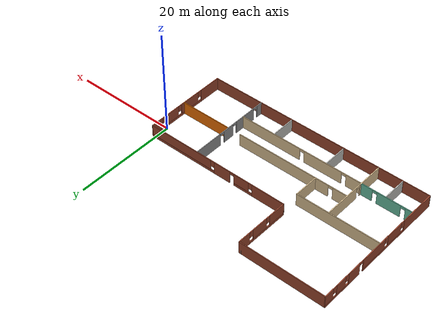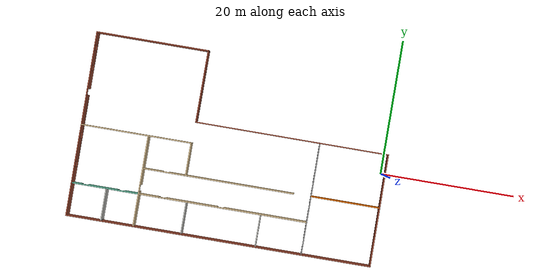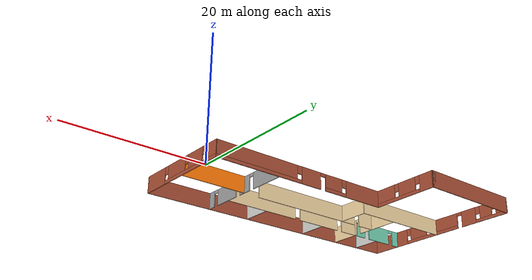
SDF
<?xml version='1.0'?>
<sdf version='1.6'>
  <model name='apartment2'>
    <pose frame=''>-22.1279 -0.039931 0 0 -0 0</pose>
    <link name='Wall_1'>
      <collision name='Wall_1_Collision'>
        <geometry>
          <box>
            <size>45.5 0.15 2.5</size>
          </box>
        </geometry>
        <pose frame=''>0 0 1.25 0 -0 0</pose>
      </collision>
      <visual name='Wall_1_Visual'>
        <pose frame=''>0 0 1.25 0 -0 0</pose>
        <geometry>
          <box>
            <size>45.5 0.15 2.5</size>
          </box>
        </geometry>
        <material>
          <script>
            <uri>file://media/materials/scripts/gazebo.material</uri>
            <name>Gazebo/Bricks</name>
          </script>
          <ambient>1 1 1 1</ambient>
        </material>
        <meta>
          <layer>0</layer>
        </meta>
      </visual>
      <pose frame=''>-0.000138 -13.6751 0 0 -0 0</pose>
    </link>
    <link name='Wall_10'>
      <collision name='Wall_10_Collision'>
        <geometry>
          <box>
            <size>0.15 0.15 2.5</size>
          </box>
        </geometry>
        <pose frame=''>0 0 1.25 0 -0 0</pose>
      </collision>
      <visual name='Wall_10_Visual'>
        <pose frame=''>0 0 1.25 0 -0 0</pose>
        <geometry>
          <box>
            <size>0.15 0.15 2.5</size>
          </box>
        </geometry>
        <material>
          <script>
            <uri>file://media/materials/scripts/gazebo.material</uri>
            <name>Gazebo/Grey</name>
          </script>
          <ambient>1 1 1 1</ambient>
        </material>
        <meta>
          <layer>0</layer>
        </meta>
      </visual>
      <pose frame=''>-6.45214 13.6749 0 0 -0 0</pose>
    </link>
    <link name='Wall_12'>
      <pose frame=''>-22.6751 -6.9e-05 0 0 -0 1.5708</pose>
      <visual name='Wall_12_Visual_0'>
        <pose frame=''>-10.0987 0 1.25 0 -0 0</pose>
        <geometry>
          <box>
            <size>7.30258 0.15 2.5</size>
          </box>
        </geometry>
        <material>
          <script>
            <uri>file://media/materials/scripts/gazebo.material</uri>
            <name>Gazebo/Bricks</name>
          </script>
          <ambient>1 1 1 1</ambient>
        </material>
        <meta>
          <layer>0</layer>
        </meta>
      </visual>
      <collision name='Wall_12_Collision_0'>
        <geometry>
          <box>
            <size>7.30258 0.15 2.5</size>
          </box>
        </geometry>
        <pose frame=''>-10.0987 0 1.25 0 -0 0</pose>
      </collision>
      <visual name='Wall_12_Visual_1'>
        <pose frame=''>6.5908 0 1.25 0 -0 0</pose>
        <geometry>
          <box>
            <size>2.71862 0.15 2.5</size>
          </box>
        </geometry>
        <material>
          <script>
            <uri>file://media/materials/scripts/gazebo.material</uri>
            <name>Gazebo/Bricks</name>
          </script>
          <ambient>1 1 1 1</ambient>
        </material>
        <meta>
          <layer>0</layer>
        </meta>
      </visual>
      <collision name='Wall_12_Collision_1'>
        <geometry>
          <box>
            <size>2.71862 0.15 2.5</size>
          </box>
        </geometry>
        <pose frame=''>6.5908 0 1.25 0 -0 0</pose>
      </collision>
      <visual name='Wall_12_Visual_2'>
        <pose frame=''>-1.05797 0 0.25 0 -0 0</pose>
        <geometry>
          <box>
            <size>10.7789 0.15 0.5</size>
          </box>
        </geometry>
        <material>
          <script>
            <uri>file://media/materials/scripts/gazebo.material</uri>
            <name>Gazebo/Bricks</name>
          </script>
          <ambient>1 1 1 1</ambient>
        </material>
        <meta>
          <layer>0</layer>
        </meta>
      </visual>
      <collision name='Wall_12_Collision_2'>
        <geometry>
          <box>
            <size>10.7789 0.15 0.5</size>
          </box>
        </geometry>
        <pose frame=''>-1.05797 0 0.25 0 -0 0</pose>
      </collision>
      <visual name='Wall_12_Visual_3'>
        <pose frame=''>10.8501 0 0.25 0 -0 0</pose>
        <geometry>
          <box>
            <size>5.7999 0.15 0.5</size>
          </box>
        </geometry>
        <material>
          <script>
            <uri>file://media/materials/scripts/gazebo.material</uri>
            <name>Gazebo/Bricks</name>
          </script>
          <ambient>1 1 1 1</ambient>
        </material>
        <meta>
          <layer>0</layer>
        </meta>
      </visual>
      <collision name='Wall_12_Collision_3'>
        <geometry>
          <box>
            <size>5.7999 0.15 0.5</size>
          </box>
        </geometry>
        <pose frame=''>10.8501 0 0.25 0 -0 0</pose>
      </collision>
      <visual name='Wall_12_Visual_4'>
        <pose frame=''>-3.89394 0 1.5 0 -0 0</pose>
        <geometry>
          <box>
            <size>3.50695 0.15 2</size>
          </box>
        </geometry>
        <material>
          <script>
            <uri>file://media/materials/scripts/gazebo.material</uri>
            <name>Gazebo/Bricks</name>
          </script>
          <ambient>1 1 1 1</ambient>
        </material>
        <meta>
          <layer>0</layer>
        </meta>
      </visual>
      <collision name='Wall_12_Collision_4'>
        <geometry>
          <box>
            <size>3.50695 0.15 2</size>
          </box>
        </geometry>
        <pose frame=''>-3.89394 0 1.5 0 -0 0</pose>
      </collision>
      <visual name='Wall_12_Visual_5'>
        <pose frame=''>1.49551 0 1.5 0 -0 0</pose>
        <geometry>
          <box>
            <size>5.67195 0.15 2</size>
          </box>
        </geometry>
        <material>
          <script>
            <uri>file://media/materials/scripts/gazebo.material</uri>
            <name>Gazebo/Bricks</name>
          </script>
          <ambient>1 1 1 1</ambient>
        </material>
        <meta>
          <layer>0</layer>
        </meta>
      </visual>
      <collision name='Wall_12_Collision_5'>
        <geometry>
          <box>
            <size>5.67195 0.15 2</size>
          </box>
        </geometry>
        <pose frame=''>1.49551 0 1.5 0 -0 0</pose>
      </collision>
      <visual name='Wall_12_Visual_6'>
        <pose frame=''>1.49551 0 1.5 0 -0 0</pose>
        <geometry>
          <box>
            <size>5.67195 0.15 2</size>
          </box>
        </geometry>
        <material>
          <script>
            <uri>file://media/materials/scripts/gazebo.material</uri>
            <name>Gazebo/Bricks</name>
          </script>
          <ambient>1 1 1 1</ambient>
        </material>
        <meta>
          <layer>0</layer>
        </meta>
      </visual>
      <collision name='Wall_12_Collision_6'>
        <geometry>
          <box>
            <size>5.67195 0.15 2</size>
          </box>
        </geometry>
        <pose frame=''>1.49551 0 1.5 0 -0 0</pose>
      </collision>
      <visual name='Wall_12_Visual_7'>
        <pose frame=''>9.85754 0 1.5 0 -0 0</pose>
        <geometry>
          <box>
            <size>2.21487 0.15 2</size>
          </box>
        </geometry>
        <material>
          <script>
            <uri>file://media/materials/scripts/gazebo.material</uri>
            <name>Gazebo/Bricks</name>
          </script>
          <ambient>1 1 1 1</ambient>
        </material>
        <meta>
          <layer>0</layer>
        </meta>
      </visual>
      <collision name='Wall_12_Collision_7'>
        <geometry>
          <box>
            <size>2.21487 0.15 2</size>
          </box>
        </geometry>
        <pose frame=''>9.85754 0 1.5 0 -0 0</pose>
      </collision>
      <visual name='Wall_12_Visual_8'>
        <pose frame=''>12.7575 0 1.5 0 -0 0</pose>
        <geometry>
          <box>
            <size>1.98503 0.15 2</size>
          </box>
        </geometry>
        <material>
          <script>
            <uri>file://media/materials/scripts/gazebo.material</uri>
            <name>Gazebo/Bricks</name>
          </script>
          <ambient>1 1 1 1</ambient>
        </material>
        <meta>
          <layer>0</layer>
        </meta>
      </visual>
      <collision name='Wall_12_Collision_8'>
        <geometry>
          <box>
            <size>1.98503 0.15 2</size>
          </box>
        </geometry>
        <pose frame=''>12.7575 0 1.5 0 -0 0</pose>
      </collision>
      <visual name='Wall_12_Visual_9'>
        <pose frame=''>-6.04742 0 1.9 0 -0 0</pose>
        <geometry>
          <box>
            <size>0.8 0.15 1.2</size>
          </box>
        </geometry>
        <material>
          <script>
            <uri>file://media/materials/scripts/gazebo.material</uri>
            <name>Gazebo/Bricks</name>
          </script>
          <ambient>1 1 1 1</ambient>
        </material>
        <meta>
          <layer>0</layer>
        </meta>
      </visual>
      <collision name='Wall_12_Collision_9'>
        <geometry>
          <box>
            <size>0.8 0.15 1.2</size>
          </box>
        </geometry>
        <pose frame=''>-6.04742 0 1.9 0 -0 0</pose>
      </collision>
      <visual name='Wall_12_Visual_10'>
        <pose frame=''>8.3501 0 1.9 0 -0 0</pose>
        <geometry>
          <box>
            <size>0.8 0.15 1.2</size>
          </box>
        </geometry>
        <material>
          <script>
            <uri>file://media/materials/scripts/gazebo.material</uri>
            <name>Gazebo/Bricks</name>
          </script>
          <ambient>1 1 1 1</ambient>
        </material>
        <meta>
          <layer>0</layer>
        </meta>
      </visual>
      <collision name='Wall_12_Collision_10'>
        <geometry>
          <box>
            <size>0.8 0.15 1.2</size>
          </box>
        </geometry>
        <pose frame=''>8.3501 0 1.9 0 -0 0</pose>
      </collision>
      <visual name='Wall_12_Visual_11'>
        <pose frame=''>-1.74047 0 1.9 0 -0 0</pose>
        <geometry>
          <box>
            <size>0.8 0.15 1.2</size>
          </box>
        </geometry>
        <material>
          <script>
            <uri>file://media/materials/scripts/gazebo.material</uri>
            <name>Gazebo/Bricks</name>
          </script>
          <ambient>1 1 1 1</ambient>
        </material>
        <meta>
          <layer>0</layer>
        </meta>
      </visual>
      <collision name='Wall_12_Collision_11'>
        <geometry>
          <box>
            <size>0.8 0.15 1.2</size>
          </box>
        </geometry>
        <pose frame=''>-1.74047 0 1.9 0 -0 0</pose>
      </collision>
      <visual name='Wall_12_Visual_12'>
        <pose frame=''>11.365 0 1.9 0 -0 0</pose>
        <geometry>
          <box>
            <size>0.8 0.15 1.2</size>
          </box>
        </geometry>
        <material>
          <script>
            <uri>file://media/materials/scripts/gazebo.material</uri>
            <name>Gazebo/Bricks</name>
          </script>
          <ambient>1 1 1 1</ambient>
        </material>
        <meta>
          <layer>0</layer>
        </meta>
      </visual>
      <collision name='Wall_12_Collision_12'>
        <geometry>
          <box>
            <size>0.8 0.15 1.2</size>
          </box>
        </geometry>
        <pose frame=''>11.365 0 1.9 0 -0 0</pose>
      </collision>
      <visual name='Wall_12_Visual_13'>
        <pose frame=''>4.78149 0 2.25 0 -0 0</pose>
        <geometry>
          <box>
            <size>0.9 0.15 0.5</size>
          </box>
        </geometry>
        <material>
          <script>
            <uri>file://media/materials/scripts/gazebo.material</uri>
            <name>Gazebo/Bricks</name>
          </script>
          <ambient>1 1 1 1</ambient>
        </material>
        <meta>
          <layer>0</layer>
        </meta>
      </visual>
      <collision name='Wall_12_Collision_13'>
        <geometry>
          <box>
            <size>0.9 0.15 0.5</size>
          </box>
        </geometry>
        <pose frame=''>4.78149 0 2.25 0 -0 0</pose>
      </collision>
      <visual name='Wall_12_Visual_14'>
        <pose frame=''>4.78149 0 2.25 0 -0 0</pose>
        <geometry>
          <box>
            <size>0.9 0.15 0.5</size>
          </box>
        </geometry>
        <material>
          <script>
            <uri>file://media/materials/scripts/gazebo.material</uri>
            <name>Gazebo/Bricks</name>
          </script>
          <ambient>1 1 1 1</ambient>
        </material>
        <meta>
          <layer>0</layer>
        </meta>
      </visual>
      <collision name='Wall_12_Collision_14'>
        <geometry>
          <box>
            <size>0.9 0.15 0.5</size>
          </box>
        </geometry>
        <pose frame=''>4.78149 0 2.25 0 -0 0</pose>
      </collision>
    </link>
    <link name='Wall_13'>
      <collision name='Wall_13_Collision'>
        <geometry>
          <box>
            <size>16.75 0.15 2.5</size>
          </box>
        </geometry>
        <pose frame=''>0 0 1.25 0 -0 0</pose>
      </collision>
      <visual name='Wall_13_Visual'>
        <pose frame=''>0 0 1.25 0 -0 0</pose>
        <geometry>
          <box>
            <size>16.75 0.15 2.5</size>
          </box>
        </geometry>
        <material>
          <script>
            <uri>file://media/materials/scripts/gazebo.material</uri>
            <name>Gazebo/Bricks</name>
          </script>
          <ambient>1 1 1 1</ambient>
        </material>
        <meta>
          <layer>0</layer>
        </meta>
      </visual>
      <pose frame=''>-14.3751 13.6749 0 0 -0 0</pose>
    </link>
    <link name='Wall_14'>
      <pose frame=''>-6.10614 8.34393 0 0 0 -1.57661</pose>
      <visual name='Wall_14_Visual_0'>
        <pose frame=''>-4.16826 0 1.25 0 -0 0</pose>
        <geometry>
          <box>
            <size>2.47566 0.15 2.5</size>
          </box>
        </geometry>
        <material>
          <script>
            <uri>file://media/materials/scripts/gazebo.material</uri>
            <name>Gazebo/Bricks</name>
          </script>
          <ambient>1 1 1 1</ambient>
        </material>
        <meta>
          <layer>0</layer>
        </meta>
      </visual>
      <collision name='Wall_14_Collision_0'>
        <geometry>
          <box>
            <size>2.47566 0.15 2.5</size>
          </box>
        </geometry>
        <pose frame=''>-4.16826 0 1.25 0 -0 0</pose>
      </collision>
      <visual name='Wall_14_Visual_1'>
        <pose frame=''>1.23783 0 0.25 0 -0 0</pose>
        <geometry>
          <box>
            <size>8.33652 0.15 0.5</size>
          </box>
        </geometry>
        <material>
          <script>
            <uri>file://media/materials/scripts/gazebo.material</uri>
            <name>Gazebo/Bricks</name>
          </script>
          <ambient>1 1 1 1</ambient>
        </material>
        <meta>
          <layer>0</layer>
        </meta>
      </visual>
      <collision name='Wall_14_Collision_1'>
        <geometry>
          <box>
            <size>8.33652 0.15 0.5</size>
          </box>
        </geometry>
        <pose frame=''>1.23783 0 0.25 0 -0 0</pose>
      </collision>
      <visual name='Wall_14_Visual_2'>
        <pose frame=''>-0.530087 0 1.5 0 -0 0</pose>
        <geometry>
          <box>
            <size>3.20068 0.15 2</size>
          </box>
        </geometry>
        <material>
          <script>
            <uri>file://media/materials/scripts/gazebo.material</uri>
            <name>Gazebo/Bricks</name>
          </script>
          <ambient>1 1 1 1</ambient>
        </material>
        <meta>
          <layer>0</layer>
        </meta>
      </visual>
      <collision name='Wall_14_Collision_2'>
        <geometry>
          <box>
            <size>3.20068 0.15 2</size>
          </box>
        </geometry>
        <pose frame=''>-0.530087 0 1.5 0 -0 0</pose>
      </collision>
      <visual name='Wall_14_Visual_3'>
        <pose frame=''>3.63817 0 1.5 0 -0 0</pose>
        <geometry>
          <box>
            <size>3.53584 0.15 2</size>
          </box>
        </geometry>
        <material>
          <script>
            <uri>file://media/materials/scripts/gazebo.material</uri>
            <name>Gazebo/Bricks</name>
          </script>
          <ambient>1 1 1 1</ambient>
        </material>
        <meta>
          <layer>0</layer>
        </meta>
      </visual>
      <collision name='Wall_14_Collision_3'>
        <geometry>
          <box>
            <size>3.53584 0.15 2</size>
          </box>
        </geometry>
        <pose frame=''>3.63817 0 1.5 0 -0 0</pose>
      </collision>
      <visual name='Wall_14_Visual_4'>
        <pose frame=''>-2.53043 0 1.9 0 -0 0</pose>
        <geometry>
          <box>
            <size>0.8 0.15 1.2</size>
          </box>
        </geometry>
        <material>
          <script>
            <uri>file://media/materials/scripts/gazebo.material</uri>
            <name>Gazebo/Bricks</name>
          </script>
          <ambient>1 1 1 1</ambient>
        </material>
        <meta>
          <layer>0</layer>
        </meta>
      </visual>
      <collision name='Wall_14_Collision_4'>
        <geometry>
          <box>
            <size>0.8 0.15 1.2</size>
          </box>
        </geometry>
        <pose frame=''>-2.53043 0 1.9 0 -0 0</pose>
      </collision>
      <visual name='Wall_14_Visual_5'>
        <pose frame=''>1.47025 0 1.9 0 -0 0</pose>
        <geometry>
          <box>
            <size>0.8 0.15 1.2</size>
          </box>
        </geometry>
        <material>
          <script>
            <uri>file://media/materials/scripts/gazebo.material</uri>
            <name>Gazebo/Bricks</name>
          </script>
          <ambient>1 1 1 1</ambient>
        </material>
        <meta>
          <layer>0</layer>
        </meta>
      </visual>
      <collision name='Wall_14_Collision_5'>
        <geometry>
          <box>
            <size>0.8 0.15 1.2</size>
          </box>
        </geometry>
        <pose frame=''>1.47025 0 1.9 0 -0 0</pose>
      </collision>
    </link>
    <link name='Wall_17'>
      <pose frame=''>8.23786 2.99943 0 0 0 -0.000939</pose>
      <visual name='Wall_17_Visual_0'>
        <pose frame=''>-11.1575 0 1.25 0 -0 0</pose>
        <geometry>
          <box>
            <size>6.58507 0.15 2.5</size>
          </box>
        </geometry>
        <material>
          <script>
            <uri>file://media/materials/scripts/gazebo.material</uri>
            <name>Gazebo/Bricks</name>
          </script>
          <ambient>1 1 1 1</ambient>
        </material>
        <meta>
          <layer>0</layer>
        </meta>
      </visual>
      <collision name='Wall_17_Collision_0'>
        <geometry>
          <box>
            <size>6.58507 0.15 2.5</size>
          </box>
        </geometry>
        <pose frame=''>-11.1575 0 1.25 0 -0 0</pose>
      </collision>
      <visual name='Wall_17_Visual_1'>
        <pose frame=''>-1.37942 0 1.25 0 -0 0</pose>
        <geometry>
          <box>
            <size>3.39525 0.15 2.5</size>
          </box>
        </geometry>
        <material>
          <script>
            <uri>file://media/materials/scripts/gazebo.material</uri>
            <name>Gazebo/Bricks</name>
          </script>
          <ambient>1 1 1 1</ambient>
        </material>
        <meta>
          <layer>0</layer>
        </meta>
      </visual>
      <collision name='Wall_17_Collision_1'>
        <geometry>
          <box>
            <size>3.39525 0.15 2.5</size>
          </box>
        </geometry>
        <pose frame=''>-1.37942 0 1.25 0 -0 0</pose>
      </collision>
      <visual name='Wall_17_Visual_2'>
        <pose frame=''>-5.92099 0 0.25 0 -0 0</pose>
        <geometry>
          <box>
            <size>3.8879 0.15 0.5</size>
          </box>
        </geometry>
        <material>
          <script>
            <uri>file://media/materials/scripts/gazebo.material</uri>
            <name>Gazebo/Bricks</name>
          </script>
          <ambient>1 1 1 1</ambient>
        </material>
        <meta>
          <layer>0</layer>
        </meta>
      </visual>
      <collision name='Wall_17_Collision_2'>
        <geometry>
          <box>
            <size>3.8879 0.15 0.5</size>
          </box>
        </geometry>
        <pose frame=''>-5.92099 0 0.25 0 -0 0</pose>
      </collision>
      <visual name='Wall_17_Visual_3'>
        <pose frame=''>7.38411 0 0.25 0 -0 0</pose>
        <geometry>
          <box>
            <size>14.1318 0.15 0.5</size>
          </box>
        </geometry>
        <material>
          <script>
            <uri>file://media/materials/scripts/gazebo.material</uri>
            <name>Gazebo/Bricks</name>
          </script>
          <ambient>1 1 1 1</ambient>
        </material>
        <meta>
          <layer>0</layer>
        </meta>
      </visual>
      <collision name='Wall_17_Collision_3'>
        <geometry>
          <box>
            <size>14.1318 0.15 0.5</size>
          </box>
        </geometry>
        <pose frame=''>7.38411 0 0.25 0 -0 0</pose>
      </collision>
      <visual name='Wall_17_Visual_4'>
        <pose frame=''>-5.52099 0 1.5 0 -0 0</pose>
        <geometry>
          <box>
            <size>3.0879 0.15 2</size>
          </box>
        </geometry>
        <material>
          <script>
            <uri>file://media/materials/scripts/gazebo.material</uri>
            <name>Gazebo/Bricks</name>
          </script>
          <ambient>1 1 1 1</ambient>
        </material>
        <meta>
          <layer>0</layer>
        </meta>
      </visual>
      <collision name='Wall_17_Collision_4'>
        <geometry>
          <box>
            <size>3.0879 0.15 2</size>
          </box>
        </geometry>
        <pose frame=''>-5.52099 0 1.5 0 -0 0</pose>
      </collision>
      <visual name='Wall_17_Visual_5'>
        <pose frame=''>-5.52099 0 1.5 0 -0 0</pose>
        <geometry>
          <box>
            <size>3.0879 0.15 2</size>
          </box>
        </geometry>
        <material>
          <script>
            <uri>file://media/materials/scripts/gazebo.material</uri>
            <name>Gazebo/Bricks</name>
          </script>
          <ambient>1 1 1 1</ambient>
        </material>
        <meta>
          <layer>0</layer>
        </meta>
      </visual>
      <collision name='Wall_17_Collision_5'>
        <geometry>
          <box>
            <size>3.0879 0.15 2</size>
          </box>
        </geometry>
        <pose frame=''>-5.52099 0 1.5 0 -0 0</pose>
      </collision>
      <visual name='Wall_17_Visual_6'>
        <pose frame=''>7.78411 0 1.5 0 -0 0</pose>
        <geometry>
          <box>
            <size>13.3318 0.15 2</size>
          </box>
        </geometry>
        <material>
          <script>
            <uri>file://media/materials/scripts/gazebo.material</uri>
            <name>Gazebo/Bricks</name>
          </script>
          <ambient>1 1 1 1</ambient>
        </material>
        <meta>
          <layer>0</layer>
        </meta>
      </visual>
      <collision name='Wall_17_Collision_6'>
        <geometry>
          <box>
            <size>13.3318 0.15 2</size>
          </box>
        </geometry>
        <pose frame=''>7.78411 0 1.5 0 -0 0</pose>
      </collision>
      <visual name='Wall_17_Visual_7'>
        <pose frame=''>-7.46494 0 1.9 0 -0 0</pose>
        <geometry>
          <box>
            <size>0.8 0.15 1.2</size>
          </box>
        </geometry>
        <material>
          <script>
            <uri>file://media/materials/scripts/gazebo.material</uri>
            <name>Gazebo/Bricks</name>
          </script>
          <ambient>1 1 1 1</ambient>
        </material>
        <meta>
          <layer>0</layer>
        </meta>
      </visual>
      <collision name='Wall_17_Collision_7'>
        <geometry>
          <box>
            <size>0.8 0.15 1.2</size>
          </box>
        </geometry>
        <pose frame=''>-7.46494 0 1.9 0 -0 0</pose>
      </collision>
      <visual name='Wall_17_Visual_8'>
        <pose frame=''>0.718207 0 1.9 0 -0 0</pose>
        <geometry>
          <box>
            <size>0.8 0.15 1.2</size>
          </box>
        </geometry>
        <material>
          <script>
            <uri>file://media/materials/scripts/gazebo.material</uri>
            <name>Gazebo/Bricks</name>
          </script>
          <ambient>1 1 1 1</ambient>
        </material>
        <meta>
          <layer>0</layer>
        </meta>
      </visual>
      <collision name='Wall_17_Collision_8'>
        <geometry>
          <box>
            <size>0.8 0.15 1.2</size>
          </box>
        </geometry>
        <pose frame=''>0.718207 0 1.9 0 -0 0</pose>
      </collision>
      <visual name='Wall_17_Visual_9'>
        <pose frame=''>-3.52704 0 2.25 0 -0 0</pose>
        <geometry>
          <box>
            <size>0.9 0.15 0.5</size>
          </box>
        </geometry>
        <material>
          <script>
            <uri>file://media/materials/scripts/gazebo.material</uri>
            <name>Gazebo/Bricks</name>
          </script>
          <ambient>1 1 1 1</ambient>
        </material>
        <meta>
          <layer>0</layer>
        </meta>
      </visual>
      <collision name='Wall_17_Collision_9'>
        <geometry>
          <box>
            <size>0.9 0.15 0.5</size>
          </box>
        </geometry>
        <pose frame=''>-3.52704 0 2.25 0 -0 0</pose>
      </collision>
      <visual name='Wall_17_Visual_10'>
        <pose frame=''>-3.52704 0 2.25 0 -0 0</pose>
        <geometry>
          <box>
            <size>0.9 0.15 0.5</size>
          </box>
        </geometry>
        <material>
          <script>
            <uri>file://media/materials/scripts/gazebo.material</uri>
            <name>Gazebo/Bricks</name>
          </script>
          <ambient>1 1 1 1</ambient>
        </material>
        <meta>
          <layer>0</layer>
        </meta>
      </visual>
      <collision name='Wall_17_Collision_10'>
        <geometry>
          <box>
            <size>0.9 0.15 0.5</size>
          </box>
        </geometry>
        <pose frame=''>-3.52704 0 2.25 0 -0 0</pose>
      </collision>
    </link>
    <link name='Wall_18'>
      <collision name='Wall_18_Collision'>
        <geometry>
          <box>
            <size>0.15 0.15 2.5</size>
          </box>
        </geometry>
        <pose frame=''>0 0 1.25 0 -0 0</pose>
      </collision>
      <visual name='Wall_18_Visual'>
        <pose frame=''>0 0 1.25 0 -0 0</pose>
        <geometry>
          <box>
            <size>0.15 0.15 2.5</size>
          </box>
        </geometry>
        <material>
          <script>
            <uri>file://media/materials/scripts/gazebo.material</uri>
            <name>Gazebo/Grey</name>
          </script>
          <ambient>1 1 1 1</ambient>
        </material>
        <meta>
          <layer>0</layer>
        </meta>
      </visual>
      <pose frame=''>22.6129 2.98593 0 0 -0 0</pose>
    </link>
    <link name='Wall_2'>
      <pose frame=''>22.6439 -5.34457 0 0 -0 1.57452</pose>
      <visual name='Wall_2_Visual_0'>
        <pose frame=''>-6.13822 0 1.25 0 -0 0</pose>
        <geometry>
          <box>
            <size>4.53472 0.15 2.5</size>
          </box>
        </geometry>
        <material>
          <script>
            <uri>file://media/materials/scripts/gazebo.material</uri>
            <name>Gazebo/Bricks</name>
          </script>
          <ambient>1 1 1 1</ambient>
        </material>
        <meta>
          <layer>0</layer>
        </meta>
      </visual>
      <collision name='Wall_2_Collision_0'>
        <geometry>
          <box>
            <size>4.53472 0.15 2.5</size>
          </box>
        </geometry>
        <pose frame=''>-6.13822 0 1.25 0 -0 0</pose>
      </collision>
      <visual name='Wall_2_Visual_1'>
        <pose frame=''>2.26736 0 0.25 0 -0 0</pose>
        <geometry>
          <box>
            <size>12.2764 0.15 0.5</size>
          </box>
        </geometry>
        <material>
          <script>
            <uri>file://media/materials/scripts/gazebo.material</uri>
            <name>Gazebo/Bricks</name>
          </script>
          <ambient>1 1 1 1</ambient>
        </material>
        <meta>
          <layer>0</layer>
        </meta>
      </visual>
      <collision name='Wall_2_Collision_1'>
        <geometry>
          <box>
            <size>12.2764 0.15 0.5</size>
          </box>
        </geometry>
        <pose frame=''>2.26736 0 0.25 0 -0 0</pose>
      </collision>
      <visual name='Wall_2_Visual_2'>
        <pose frame=''>-0.948689 0 1.5 0 -0 0</pose>
        <geometry>
          <box>
            <size>4.24434 0.15 2</size>
          </box>
        </geometry>
        <material>
          <script>
            <uri>file://media/materials/scripts/gazebo.material</uri>
            <name>Gazebo/Bricks</name>
          </script>
          <ambient>1 1 1 1</ambient>
        </material>
        <meta>
          <layer>0</layer>
        </meta>
      </visual>
      <collision name='Wall_2_Collision_2'>
        <geometry>
          <box>
            <size>4.24434 0.15 2</size>
          </box>
        </geometry>
        <pose frame=''>-0.948689 0 1.5 0 -0 0</pose>
      </collision>
      <visual name='Wall_2_Visual_3'>
        <pose frame=''>3.60389 0 1.5 0 -0 0</pose>
        <geometry>
          <box>
            <size>3.26081 0.15 2</size>
          </box>
        </geometry>
        <material>
          <script>
            <uri>file://media/materials/scripts/gazebo.material</uri>
            <name>Gazebo/Bricks</name>
          </script>
          <ambient>1 1 1 1</ambient>
        </material>
        <meta>
          <layer>0</layer>
        </meta>
      </visual>
      <collision name='Wall_2_Collision_3'>
        <geometry>
          <box>
            <size>3.26081 0.15 2</size>
          </box>
        </geometry>
        <pose frame=''>3.60389 0 1.5 0 -0 0</pose>
      </collision>
      <visual name='Wall_2_Visual_4'>
        <pose frame=''>7.21993 0 1.5 0 -0 0</pose>
        <geometry>
          <box>
            <size>2.37128 0.15 2</size>
          </box>
        </geometry>
        <material>
          <script>
            <uri>file://media/materials/scripts/gazebo.material</uri>
            <name>Gazebo/Bricks</name>
          </script>
          <ambient>1 1 1 1</ambient>
        </material>
        <meta>
          <layer>0</layer>
        </meta>
      </visual>
      <collision name='Wall_2_Collision_4'>
        <geometry>
          <box>
            <size>2.37128 0.15 2</size>
          </box>
        </geometry>
        <pose frame=''>7.21993 0 1.5 0 -0 0</pose>
      </collision>
      <visual name='Wall_2_Visual_5'>
        <pose frame=''>-3.47086 0 1.9 0 -0 0</pose>
        <geometry>
          <box>
            <size>0.8 0.15 1.2</size>
          </box>
        </geometry>
        <material>
          <script>
            <uri>file://media/materials/scripts/gazebo.material</uri>
            <name>Gazebo/Bricks</name>
          </script>
          <ambient>1 1 1 1</ambient>
        </material>
        <meta>
          <layer>0</layer>
        </meta>
      </visual>
      <collision name='Wall_2_Collision_5'>
        <geometry>
          <box>
            <size>0.8 0.15 1.2</size>
          </box>
        </geometry>
        <pose frame=''>-3.47086 0 1.9 0 -0 0</pose>
      </collision>
      <visual name='Wall_2_Visual_6'>
        <pose frame=''>1.57348 0 1.9 0 -0 0</pose>
        <geometry>
          <box>
            <size>0.8 0.15 1.2</size>
          </box>
        </geometry>
        <material>
          <script>
            <uri>file://media/materials/scripts/gazebo.material</uri>
            <name>Gazebo/Bricks</name>
          </script>
          <ambient>1 1 1 1</ambient>
        </material>
        <meta>
          <layer>0</layer>
        </meta>
      </visual>
      <collision name='Wall_2_Collision_6'>
        <geometry>
          <box>
            <size>0.8 0.15 1.2</size>
          </box>
        </geometry>
        <pose frame=''>1.57348 0 1.9 0 -0 0</pose>
      </collision>
      <visual name='Wall_2_Visual_7'>
        <pose frame=''>5.63429 0 1.9 0 -0 0</pose>
        <geometry>
          <box>
            <size>0.8 0.15 1.2</size>
          </box>
        </geometry>
        <material>
          <script>
            <uri>file://media/materials/scripts/gazebo.material</uri>
            <name>Gazebo/Bricks</name>
          </script>
          <ambient>1 1 1 1</ambient>
        </material>
        <meta>
          <layer>0</layer>
        </meta>
      </visual>
      <collision name='Wall_2_Collision_7'>
        <geometry>
          <box>
            <size>0.8 0.15 1.2</size>
          </box>
        </geometry>
        <pose frame=''>5.63429 0 1.9 0 -0 0</pose>
      </collision>
    </link>
    <link name='Wall_20'>
      <collision name='Wall_20_Collision'>
        <geometry>
          <box>
            <size>16.5 0.15 2.5</size>
          </box>
        </geometry>
        <pose frame=''>0 0 1.25 0 -0 0</pose>
      </collision>
      <visual name='Wall_20_Visual'>
        <pose frame=''>0 0 1.25 0 -0 0</pose>
        <geometry>
          <box>
            <size>16.5 0.15 2.5</size>
          </box>
        </geometry>
        <material>
          <script>
            <uri>file://media/materials/scripts/gazebo.material</uri>
            <name>Gazebo/Grey</name>
          </script>
          <ambient>0.921569 0.807843 0.615686 1</ambient>
        </material>
        <meta>
          <layer>0</layer>
        </meta>
      </visual>
      <pose frame=''>-14.4941 -0.141069 0 0 -0 0</pose>
    </link>
    <link name='Wall_21'>
      <collision name='Wall_21_Collision'>
        <geometry>
          <box>
            <size>5 0.15 2.5</size>
          </box>
        </geometry>
        <pose frame=''>0 0 1.25 0 -0 0</pose>
      </collision>
      <visual name='Wall_21_Visual'>
        <pose frame=''>0 0 1.25 0 -0 0</pose>
        <geometry>
          <box>
            <size>5 0.15 2.5</size>
          </box>
        </geometry>
        <material>
          <script>
            <uri>file://media/materials/scripts/gazebo.material</uri>
            <name>Gazebo/Grey</name>
          </script>
          <ambient>0.921569 0.807843 0.615686 1</ambient>
        </material>
        <meta>
          <layer>0</layer>
        </meta>
      </visual>
      <pose frame=''>-6.31914 -2.56607 0 0 0 -1.5708</pose>
    </link>
    <link name='Wall_22'>
      <collision name='Wall_22_Collision'>
        <geometry>
          <box>
            <size>16.25 0.15 2.5</size>
          </box>
        </geometry>
        <pose frame=''>0 0 1.25 0 -0 0</pose>
      </collision>
      <visual name='Wall_22_Visual'>
        <pose frame=''>0 0 1.25 0 -0 0</pose>
        <geometry>
          <box>
            <size>16.25 0.15 2.5</size>
          </box>
        </geometry>
        <material>
          <script>
            <uri>file://media/materials/scripts/gazebo.material</uri>
            <name>Gazebo/Grey</name>
          </script>
          <ambient>0.921569 0.807843 0.615686 1</ambient>
        </material>
        <meta>
          <layer>0</layer>
        </meta>
      </visual>
      <pose frame=''>1.73086 -4.99107 0 0 -0 0</pose>
    </link>
    <link name='Wall_24'>
      <pose frame=''>12.4019 -5.36442 0 0 0 -1.5708</pose>
      <visual name='Wall_24_Visual_0'>
        <pose frame=''>-5.45534 0 1.25 0 -0 0</pose>
        <geometry>
          <box>
            <size>5.83932 0.15 2.5</size>
          </box>
        </geometry>
        <material>
          <script>
            <uri>file://media/materials/scripts/gazebo.material</uri>
            <name>Gazebo/Grey</name>
          </script>
          <ambient>1 1 1 1</ambient>
        </material>
        <meta>
          <layer>0</layer>
        </meta>
      </visual>
      <collision name='Wall_24_Collision_0'>
        <geometry>
          <box>
            <size>5.83932 0.15 2.5</size>
          </box>
        </geometry>
        <pose frame=''>-5.45534 0 1.25 0 -0 0</pose>
      </collision>
      <visual name='Wall_24_Visual_1'>
        <pose frame=''>-0.48596 0 1.25 0 -0 0</pose>
        <geometry>
          <box>
            <size>2.29945 0.15 2.5</size>
          </box>
        </geometry>
        <material>
          <script>
            <uri>file://media/materials/scripts/gazebo.material</uri>
            <name>Gazebo/Grey</name>
          </script>
          <ambient>1 1 1 1</ambient>
        </material>
        <meta>
          <layer>0</layer>
        </meta>
      </visual>
      <collision name='Wall_24_Collision_1'>
        <geometry>
          <box>
            <size>2.29945 0.15 2.5</size>
          </box>
        </geometry>
        <pose frame=''>-0.48596 0 1.25 0 -0 0</pose>
      </collision>
      <visual name='Wall_24_Visual_2'>
        <pose frame=''>3.85176 0 1.25 0 -0 0</pose>
        <geometry>
          <box>
            <size>4.57598 0.15 2.5</size>
          </box>
        </geometry>
        <material>
          <script>
            <uri>file://media/materials/scripts/gazebo.material</uri>
            <name>Gazebo/Grey</name>
          </script>
          <ambient>1 1 1 1</ambient>
        </material>
        <meta>
          <layer>0</layer>
        </meta>
      </visual>
      <collision name='Wall_24_Collision_2'>
        <geometry>
          <box>
            <size>4.57598 0.15 2.5</size>
          </box>
        </geometry>
        <pose frame=''>3.85176 0 1.25 0 -0 0</pose>
      </collision>
      <visual name='Wall_24_Visual_3'>
        <pose frame=''>7.70737 0 1.25 0 -0 0</pose>
        <geometry>
          <box>
            <size>1.33525 0.15 2.5</size>
          </box>
        </geometry>
        <material>
          <script>
            <uri>file://media/materials/scripts/gazebo.material</uri>
            <name>Gazebo/Grey</name>
          </script>
          <ambient>1 1 1 1</ambient>
        </material>
        <meta>
          <layer>0</layer>
        </meta>
      </visual>
      <collision name='Wall_24_Collision_3'>
        <geometry>
          <box>
            <size>1.33525 0.15 2.5</size>
          </box>
        </geometry>
        <pose frame=''>7.70737 0 1.25 0 -0 0</pose>
      </collision>
      <visual name='Wall_24_Visual_4'>
        <pose frame=''>-2.08568 0 2.25 0 -0 0</pose>
        <geometry>
          <box>
            <size>0.9 0.15 0.5</size>
          </box>
        </geometry>
        <material>
          <script>
            <uri>file://media/materials/scripts/gazebo.material</uri>
            <name>Gazebo/Grey</name>
          </script>
          <ambient>1 1 1 1</ambient>
        </material>
        <meta>
          <layer>0</layer>
        </meta>
      </visual>
      <collision name='Wall_24_Collision_4'>
        <geometry>
          <box>
            <size>0.9 0.15 0.5</size>
          </box>
        </geometry>
        <pose frame=''>-2.08568 0 2.25 0 -0 0</pose>
      </collision>
      <visual name='Wall_24_Visual_5'>
        <pose frame=''>1.11376 0 2.25 0 -0 0</pose>
        <geometry>
          <box>
            <size>0.9 0.15 0.5</size>
          </box>
        </geometry>
        <material>
          <script>
            <uri>file://media/materials/scripts/gazebo.material</uri>
            <name>Gazebo/Grey</name>
          </script>
          <ambient>1 1 1 1</ambient>
        </material>
        <meta>
          <layer>0</layer>
        </meta>
      </visual>
      <collision name='Wall_24_Collision_5'>
        <geometry>
          <box>
            <size>0.9 0.15 0.5</size>
          </box>
        </geometry>
        <pose frame=''>1.11376 0 2.25 0 -0 0</pose>
      </collision>
      <visual name='Wall_24_Visual_6'>
        <pose frame=''>6.58975 0 2.25 0 -0 0</pose>
        <geometry>
          <box>
            <size>0.9 0.15 0.5</size>
          </box>
        </geometry>
        <material>
          <script>
            <uri>file://media/materials/scripts/gazebo.material</uri>
            <name>Gazebo/Grey</name>
          </script>
          <ambient>1 1 1 1</ambient>
        </material>
        <meta>
          <layer>0</layer>
        </meta>
      </visual>
      <collision name='Wall_24_Collision_6'>
        <geometry>
          <box>
            <size>0.9 0.15 0.5</size>
          </box>
        </geometry>
        <pose frame=''>6.58975 0 2.25 0 -0 0</pose>
      </collision>
    </link>
    <link name='Wall_26'>
      <collision name='Wall_26_Collision'>
        <geometry>
          <box>
            <size>10.25 0.15 2.5</size>
          </box>
        </geometry>
        <pose frame=''>0 0 1.25 0 -0 0</pose>
      </collision>
      <visual name='Wall_26_Visual'>
        <pose frame=''>0 0 1.25 0 -0 0</pose>
        <geometry>
          <box>
            <size>10.25 0.15 2.5</size>
          </box>
        </geometry>
        <material>
          <script>
            <uri>file://media/materials/scripts/gazebo.material</uri>
            <name>Gazebo/Grey</name>
          </script>
          <ambient>0.996078 0.47451 0.0196078 1</ambient>
        </material>
        <meta>
          <layer>0</layer>
        </meta>
      </visual>
      <pose frame=''>17.5139 -4.94007 0 0 -0 0</pose>
    </link>
    <link name='Wall_28'>
      <pose frame=''>-12.7011 -6.87707 0 0 0 -1.5708</pose>
      <visual name='Wall_28_Visual_0'>
        <pose frame=''>-3.06124 0 1.25 0 -0 0</pose>
        <geometry>
          <box>
            <size>7.37751 0.15 2.5</size>
          </box>
        </geometry>
        <material>
          <script>
            <uri>file://media/materials/scripts/gazebo.material</uri>
            <name>Gazebo/Grey</name>
          </script>
          <ambient>0.921569 0.807843 0.615686 1</ambient>
        </material>
        <meta>
          <layer>0</layer>
        </meta>
      </visual>
      <collision name='Wall_28_Collision_0'>
        <geometry>
          <box>
            <size>7.37751 0.15 2.5</size>
          </box>
        </geometry>
        <pose frame=''>-3.06124 0 1.25 0 -0 0</pose>
      </collision>
      <visual name='Wall_28_Visual_1'>
        <pose frame=''>4.13876 0 1.25 0 -0 0</pose>
        <geometry>
          <box>
            <size>5.22249 0.15 2.5</size>
          </box>
        </geometry>
        <material>
          <script>
            <uri>file://media/materials/scripts/gazebo.material</uri>
            <name>Gazebo/Grey</name>
          </script>
          <ambient>0.921569 0.807843 0.615686 1</ambient>
        </material>
        <meta>
          <layer>0</layer>
        </meta>
      </visual>
      <collision name='Wall_28_Collision_1'>
        <geometry>
          <box>
            <size>5.22249 0.15 2.5</size>
          </box>
        </geometry>
        <pose frame=''>4.13876 0 1.25 0 -0 0</pose>
      </collision>
      <visual name='Wall_28_Visual_2'>
        <pose frame=''>1.07751 0 2.25 0 -0 0</pose>
        <geometry>
          <box>
            <size>0.9 0.15 0.5</size>
          </box>
        </geometry>
        <material>
          <script>
            <uri>file://media/materials/scripts/gazebo.material</uri>
            <name>Gazebo/Grey</name>
          </script>
          <ambient>0.921569 0.807843 0.615686 1</ambient>
        </material>
        <meta>
          <layer>0</layer>
        </meta>
      </visual>
      <collision name='Wall_28_Collision_2'>
        <geometry>
          <box>
            <size>0.9 0.15 0.5</size>
          </box>
        </geometry>
        <pose frame=''>1.07751 0 2.25 0 -0 0</pose>
      </collision>
    </link>
    <link name='Wall_30'>
      <pose frame=''>-17.6827 -8.81607 0 0 -0 0</pose>
      <visual name='Wall_30_Visual_0'>
        <pose frame=''>-4.27534 0 1.25 0 -0 0</pose>
        <geometry>
          <box>
            <size>1.32626 0.15 2.5</size>
          </box>
        </geometry>
        <material>
          <script>
            <uri>file://media/materials/scripts/gazebo.material</uri>
            <name>Gazebo/Grey</name>
          </script>
          <ambient>0.435294 0.796078 0.67451 1</ambient>
        </material>
        <meta>
          <layer>0</layer>
        </meta>
      </visual>
      <collision name='Wall_30_Collision_0'>
        <geometry>
          <box>
            <size>1.32626 0.15 2.5</size>
          </box>
        </geometry>
        <pose frame=''>-4.27534 0 1.25 0 -0 0</pose>
      </collision>
      <visual name='Wall_30_Visual_1'>
        <pose frame=''>-0.428051 0 1.25 0 -0 0</pose>
        <geometry>
          <box>
            <size>4.56833 0.15 2.5</size>
          </box>
        </geometry>
        <material>
          <script>
            <uri>file://media/materials/scripts/gazebo.material</uri>
            <name>Gazebo/Grey</name>
          </script>
          <ambient>0.435294 0.796078 0.67451 1</ambient>
        </material>
        <meta>
          <layer>0</layer>
        </meta>
      </visual>
      <collision name='Wall_30_Collision_1'>
        <geometry>
          <box>
            <size>4.56833 0.15 2.5</size>
          </box>
        </geometry>
        <pose frame=''>-0.428051 0 1.25 0 -0 0</pose>
      </collision>
      <visual name='Wall_30_Visual_2'>
        <pose frame=''>3.84729 0 1.25 0 -0 0</pose>
        <geometry>
          <box>
            <size>2.18236 0.15 2.5</size>
          </box>
        </geometry>
        <material>
          <script>
            <uri>file://media/materials/scripts/gazebo.material</uri>
            <name>Gazebo/Grey</name>
          </script>
          <ambient>0.435294 0.796078 0.67451 1</ambient>
        </material>
        <meta>
          <layer>0</layer>
        </meta>
      </visual>
      <collision name='Wall_30_Collision_2'>
        <geometry>
          <box>
            <size>2.18236 0.15 2.5</size>
          </box>
        </geometry>
        <pose frame=''>3.84729 0 1.25 0 -0 0</pose>
      </collision>
      <visual name='Wall_30_Visual_3'>
        <pose frame=''>-3.16222 0 2.25 0 -0 0</pose>
        <geometry>
          <box>
            <size>0.9 0.15 0.5</size>
          </box>
        </geometry>
        <material>
          <script>
            <uri>file://media/materials/scripts/gazebo.material</uri>
            <name>Gazebo/Grey</name>
          </script>
          <ambient>0.435294 0.796078 0.67451 1</ambient>
        </material>
        <meta>
          <layer>0</layer>
        </meta>
      </visual>
      <collision name='Wall_30_Collision_3'>
        <geometry>
          <box>
            <size>0.9 0.15 0.5</size>
          </box>
        </geometry>
        <pose frame=''>-3.16222 0 2.25 0 -0 0</pose>
      </collision>
      <visual name='Wall_30_Visual_4'>
        <pose frame=''>2.30611 0 2.25 0 -0 0</pose>
        <geometry>
          <box>
            <size>0.9 0.15 0.5</size>
          </box>
        </geometry>
        <material>
          <script>
            <uri>file://media/materials/scripts/gazebo.material</uri>
            <name>Gazebo/Grey</name>
          </script>
          <ambient>0.435294 0.796078 0.67451 1</ambient>
        </material>
        <meta>
          <layer>0</layer>
        </meta>
      </visual>
      <collision name='Wall_30_Collision_4'>
        <geometry>
          <box>
            <size>0.9 0.15 0.5</size>
          </box>
        </geometry>
        <pose frame=''>2.30611 0 2.25 0 -0 0</pose>
      </collision>
    </link>
    <link name='Wall_34'>
      <collision name='Wall_34_Collision'>
        <geometry>
          <box>
            <size>4.75 0.15 2.5</size>
          </box>
        </geometry>
        <pose frame=''>0 0 1.25 0 -0 0</pose>
      </collision>
      <visual name='Wall_34_Visual'>
        <pose frame=''>0 0 1.25 0 -0 0</pose>
        <geometry>
          <box>
            <size>4.75 0.15 2.5</size>
          </box>
        </geometry>
        <material>
          <script>
            <uri>file://media/materials/scripts/gazebo.material</uri>
            <name>Gazebo/CeilingTiled</name>
          </script>
          <ambient>1 1 1 1</ambient>
        </material>
        <meta>
          <layer>0</layer>
        </meta>
      </visual>
      <pose frame=''>-17.5011 -11.2391 0 0 0 -1.5708</pose>
    </link>
    <link name='Wall_35'>
      <collision name='Wall_35_Collision'>
        <geometry>
          <box>
            <size>0.16 0.15 2.5</size>
          </box>
        </geometry>
        <pose frame=''>0 0 1.25 0 -0 0</pose>
      </collision>
      <visual name='Wall_35_Visual'>
        <pose frame=''>0 0 1.25 0 -0 0</pose>
        <geometry>
          <box>
            <size>0.16 0.15 2.5</size>
          </box>
        </geometry>
        <material>
          <script>
            <uri>file://media/materials/scripts/gazebo.material</uri>
            <name>Gazebo/Grey</name>
          </script>
          <ambient>1 1 1 1</ambient>
        </material>
        <meta>
          <layer>0</layer>
        </meta>
      </visual>
      <pose frame=''>-17.4959 -13.5392 0 0 0 -0.021871</pose>
    </link>
    <link name='Wall_37'>
      <pose frame=''>-9.21714 -5.00107 0 0 -0 0</pose>
      <visual name='Wall_37_Visual_0'>
        <pose frame=''>-1.99354 0 1.25 0 -0 0</pose>
        <geometry>
          <box>
            <size>2.76292 0.15 2.5</size>
          </box>
        </geometry>
        <material>
          <script>
            <uri>file://media/materials/scripts/gazebo.material</uri>
            <name>Gazebo/Grey</name>
          </script>
          <ambient>0.921569 0.807843 0.615686 1</ambient>
        </material>
        <meta>
          <layer>0</layer>
        </meta>
      </visual>
      <collision name='Wall_37_Collision_0'>
        <geometry>
          <box>
            <size>2.76292 0.15 2.5</size>
          </box>
        </geometry>
        <pose frame=''>-1.99354 0 1.25 0 -0 0</pose>
      </collision>
      <visual name='Wall_37_Visual_1'>
        <pose frame=''>1.83146 0 1.25 0 -0 0</pose>
        <geometry>
          <box>
            <size>3.08708 0.15 2.5</size>
          </box>
        </geometry>
        <material>
          <script>
            <uri>file://media/materials/scripts/gazebo.material</uri>
            <name>Gazebo/Grey</name>
          </script>
          <ambient>0.921569 0.807843 0.615686 1</ambient>
        </material>
        <meta>
          <layer>0</layer>
        </meta>
      </visual>
      <collision name='Wall_37_Collision_1'>
        <geometry>
          <box>
            <size>3.08708 0.15 2.5</size>
          </box>
        </geometry>
        <pose frame=''>1.83146 0 1.25 0 -0 0</pose>
      </collision>
      <visual name='Wall_37_Visual_2'>
        <pose frame=''>-0.162079 0 2.25 0 -0 0</pose>
        <geometry>
          <box>
            <size>0.9 0.15 0.5</size>
          </box>
        </geometry>
        <material>
          <script>
            <uri>file://media/materials/scripts/gazebo.material</uri>
            <name>Gazebo/Grey</name>
          </script>
          <ambient>0.921569 0.807843 0.615686 1</ambient>
        </material>
        <meta>
          <layer>0</layer>
        </meta>
      </visual>
      <collision name='Wall_37_Collision_2'>
        <geometry>
          <box>
            <size>0.9 0.15 0.5</size>
          </box>
        </geometry>
        <pose frame=''>-0.162079 0 2.25 0 -0 0</pose>
      </collision>
    </link>
    <link name='Wall_39'>
      <pose frame=''>-0.207666 -8.81607 0 0 -0 0</pose>
      <visual name='Wall_39_Visual_0'>
        <pose frame=''>-11.031 0 1.25 0 -0 0</pose>
        <geometry>
          <box>
            <size>3.18808 0.15 2.5</size>
          </box>
        </geometry>
        <material>
          <script>
            <uri>file://media/materials/scripts/gazebo.material</uri>
            <name>Gazebo/Grey</name>
          </script>
          <ambient>0.921569 0.807843 0.615686 1</ambient>
        </material>
        <meta>
          <layer>0</layer>
        </meta>
      </visual>
      <collision name='Wall_39_Collision_0'>
        <geometry>
          <box>
            <size>3.18808 0.15 2.5</size>
          </box>
        </geometry>
        <pose frame=''>-11.031 0 1.25 0 -0 0</pose>
      </collision>
      <visual name='Wall_39_Visual_1'>
        <pose frame=''>-4.64913 0 1.25 0 -0 0</pose>
        <geometry>
          <box>
            <size>7.77559 0.15 2.5</size>
          </box>
        </geometry>
        <material>
          <script>
            <uri>file://media/materials/scripts/gazebo.material</uri>
            <name>Gazebo/Grey</name>
          </script>
          <ambient>0.921569 0.807843 0.615686 1</ambient>
        </material>
        <meta>
          <layer>0</layer>
        </meta>
      </visual>
      <collision name='Wall_39_Collision_1'>
        <geometry>
          <box>
            <size>7.77559 0.15 2.5</size>
          </box>
        </geometry>
        <pose frame=''>-4.64913 0 1.25 0 -0 0</pose>
      </collision>
      <visual name='Wall_39_Visual_2'>
        <pose frame=''>6.38183 0 1.25 0 -0 0</pose>
        <geometry>
          <box>
            <size>12.4863 0.15 2.5</size>
          </box>
        </geometry>
        <material>
          <script>
            <uri>file://media/materials/scripts/gazebo.material</uri>
            <name>Gazebo/Grey</name>
          </script>
          <ambient>0.921569 0.807843 0.615686 1</ambient>
        </material>
        <meta>
          <layer>0</layer>
        </meta>
      </visual>
      <collision name='Wall_39_Collision_2'>
        <geometry>
          <box>
            <size>12.4863 0.15 2.5</size>
          </box>
        </geometry>
        <pose frame=''>6.38183 0 1.25 0 -0 0</pose>
      </collision>
      <visual name='Wall_39_Visual_3'>
        <pose frame=''>-8.98692 0 2.25 0 -0 0</pose>
        <geometry>
          <box>
            <size>0.9 0.15 0.5</size>
          </box>
        </geometry>
        <material>
          <script>
            <uri>file://media/materials/scripts/gazebo.material</uri>
            <name>Gazebo/Grey</name>
          </script>
          <ambient>0.921569 0.807843 0.615686 1</ambient>
        </material>
        <meta>
          <layer>0</layer>
        </meta>
      </visual>
      <collision name='Wall_39_Collision_3'>
        <geometry>
          <box>
            <size>0.9 0.15 0.5</size>
          </box>
        </geometry>
        <pose frame=''>-8.98692 0 2.25 0 -0 0</pose>
      </collision>
      <visual name='Wall_39_Visual_4'>
        <pose frame=''>-0.311338 0 2.25 0 -0 0</pose>
        <geometry>
          <box>
            <size>0.9 0.15 0.5</size>
          </box>
        </geometry>
        <material>
          <script>
            <uri>file://media/materials/scripts/gazebo.material</uri>
            <name>Gazebo/Grey</name>
          </script>
          <ambient>0.921569 0.807843 0.615686 1</ambient>
        </material>
        <meta>
          <layer>0</layer>
        </meta>
      </visual>
      <collision name='Wall_39_Collision_4'>
        <geometry>
          <box>
            <size>0.9 0.15 0.5</size>
          </box>
        </geometry>
        <pose frame=''>-0.311338 0 2.25 0 -0 0</pose>
      </collision>
    </link>
    <link name='Wall_47'>
      <collision name='Wall_47_Collision'>
        <geometry>
          <box>
            <size>5 0.15 2.5</size>
          </box>
        </geometry>
        <pose frame=''>0 0 1.25 0 -0 0</pose>
      </collision>
      <visual name='Wall_47_Visual'>
        <pose frame=''>0 0 1.25 0 -0 0</pose>
        <geometry>
          <box>
            <size>5 0.15 2.5</size>
          </box>
        </geometry>
        <material>
          <script>
            <uri>file://media/materials/scripts/gazebo.material</uri>
            <name>Gazebo/CeilingTiled</name>
          </script>
          <ambient>1 1 1 1</ambient>
        </material>
        <meta>
          <layer>0</layer>
        </meta>
      </visual>
      <pose frame=''>5.51086 -11.2411 0 0 0 -1.5708</pose>
    </link>
    <link name='Wall_49'>
      <collision name='Wall_49_Collision'>
        <geometry>
          <box>
            <size>4.75 0.15 2.5</size>
          </box>
        </geometry>
        <pose frame=''>0 0 1.25 0 -0 0</pose>
      </collision>
      <visual name='Wall_49_Visual'>
        <pose frame=''>0 0 1.25 0 -0 0</pose>
        <geometry>
          <box>
            <size>4.75 0.15 2.5</size>
          </box>
        </geometry>
        <material>
          <script>
            <uri>file://media/materials/scripts/gazebo.material</uri>
            <name>Gazebo/CeilingTiled</name>
          </script>
          <ambient>1 1 1 1</ambient>
        </material>
        <meta>
          <layer>0</layer>
        </meta>
      </visual>
      <pose frame=''>-5.56414 -11.1781 0 0 0 -1.5708</pose>
    </link>
    <link name='Wall_9'>
      <collision name='Wall_9_Collision'>
        <geometry>
          <box>
            <size>0.15 0.15 2.5</size>
          </box>
        </geometry>
        <pose frame=''>0 0 1.25 0 -0 0</pose>
      </collision>
      <visual name='Wall_9_Visual'>
        <pose frame=''>0 0 1.25 0 -0 0</pose>
        <geometry>
          <box>
            <size>0.15 0.15 2.5</size>
          </box>
        </geometry>
        <material>
          <script>
            <uri>file://media/materials/scripts/gazebo.material</uri>
            <name>Gazebo/Grey</name>
          </script>
          <ambient>1 1 1 1</ambient>
        </material>
        <meta>
          <layer>0</layer>
        </meta>
      </visual>
      <pose frame=''>-6.45214 13.6749 0 0 -0 0</pose>
    </link>
    <static>1</static>
  </model>
</sdf>
